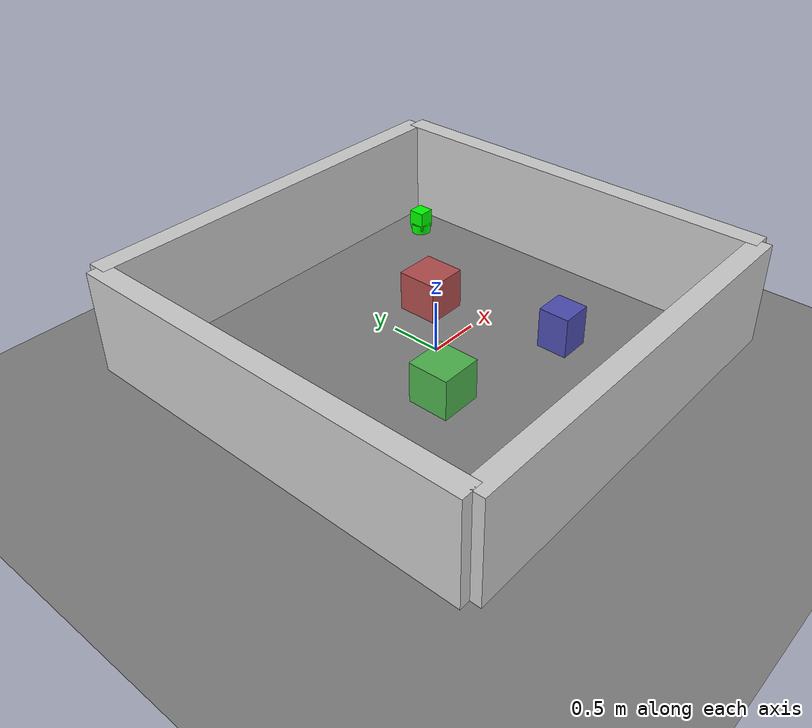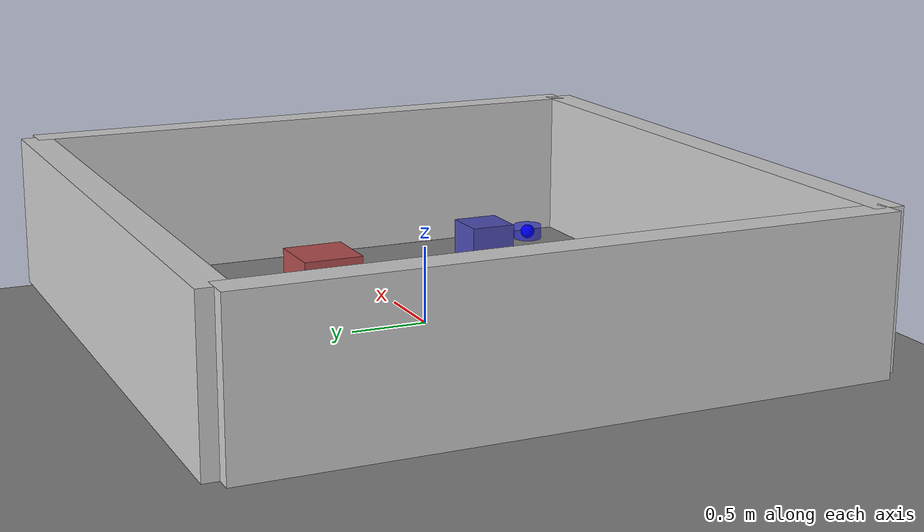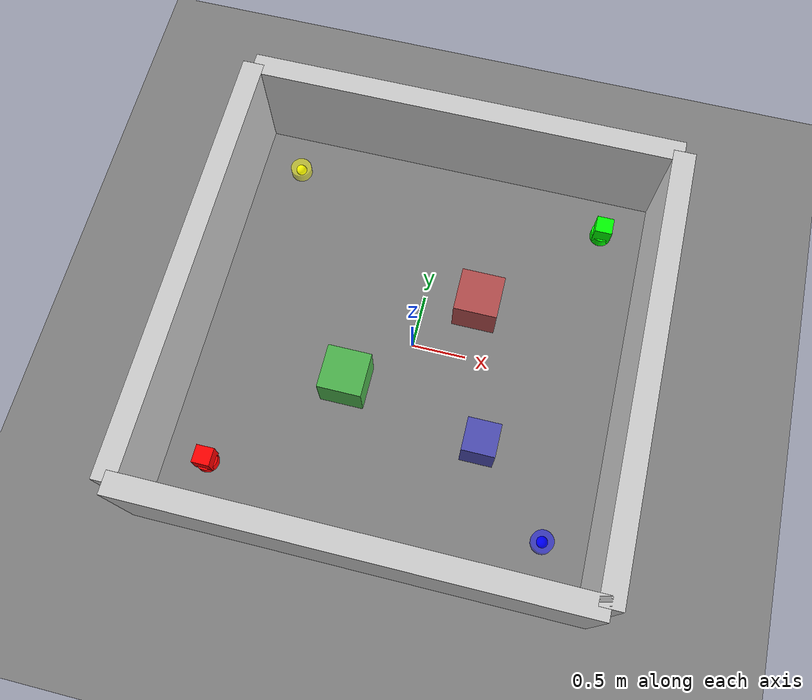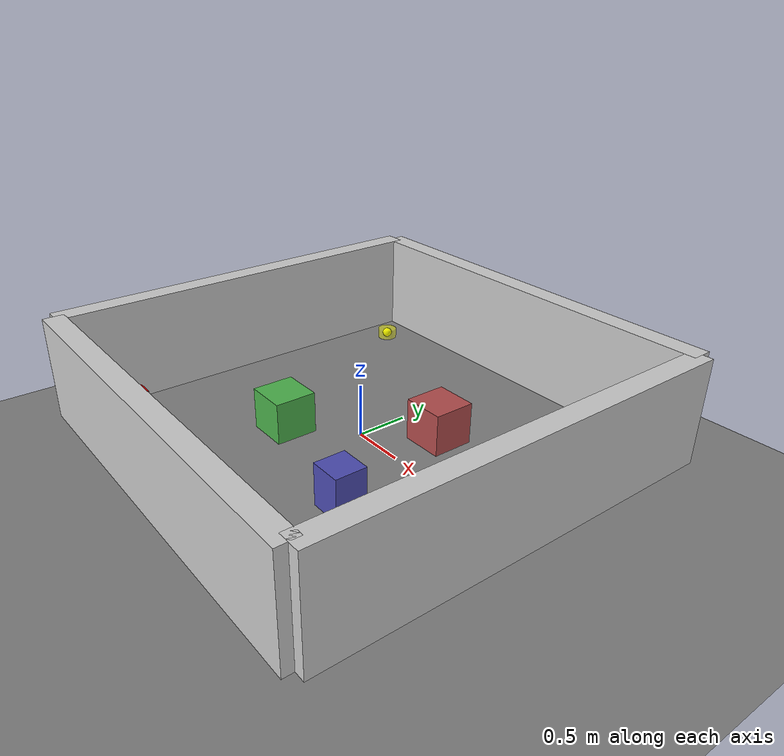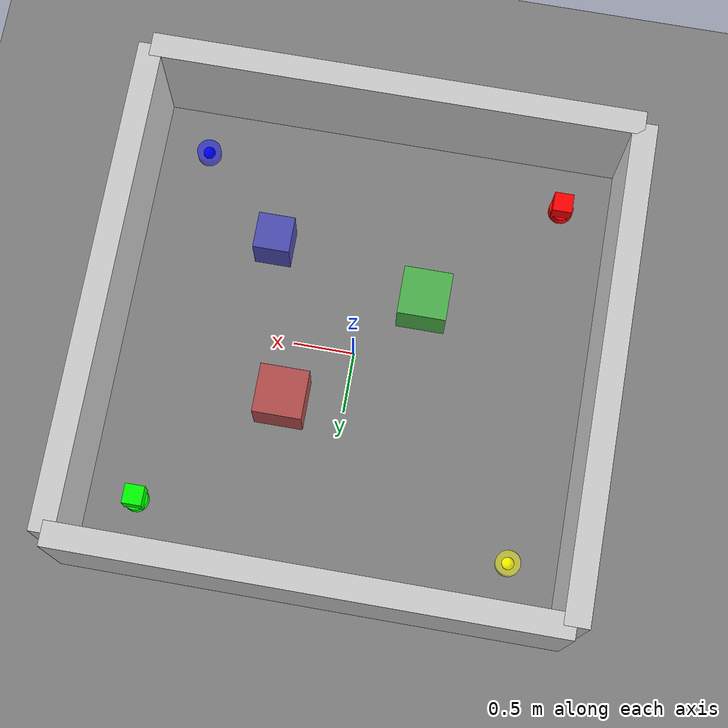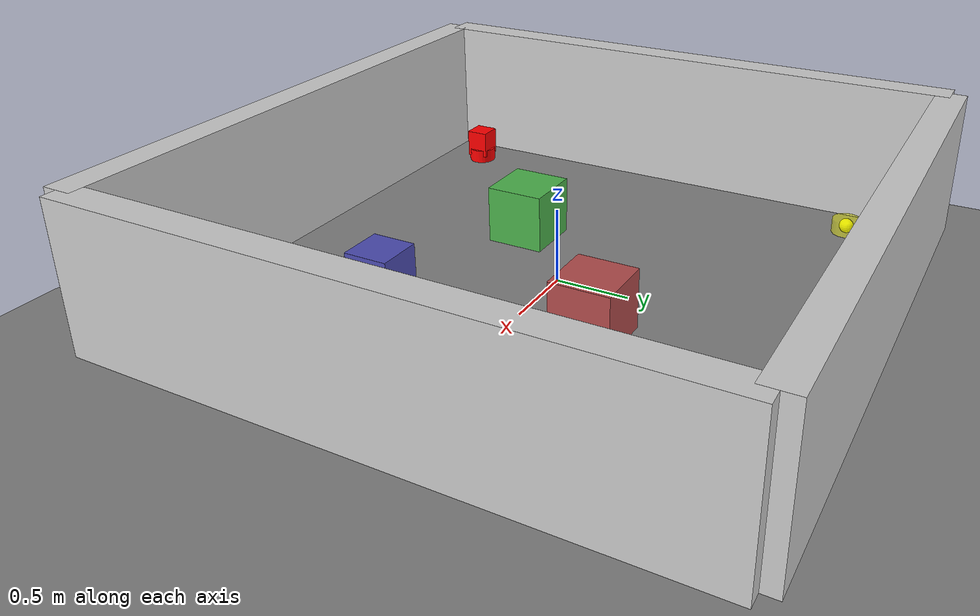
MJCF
<mujoco model="custom_navigation">
  <compiler angle="radian" autolimits="true"/>
  <option timestep="0.002" gravity="0 0 -9.81"/>

  <visual>
    <headlight diffuse="0.6 0.6 0.6" ambient="0.1 0.1 0.1" specular="0 0 0"/>
    <rgba haze="0.15 0.25 0.35 1"/>
    <global azimuth="120" elevation="-20"/>
  </visual>

  <worldbody>
    <!-- 光照 -->
    <light pos="0 0 2" dir="0 0 -1" directional="true"/>

    <!-- 地面 -->
    <geom name="floor" pos="0 0 -0.5" size="0 0 0.05" type="plane" rgba="0.5 0.5 0.5 1"/>

    <!-- 房间边界 -->
    <body name="room" pos="0 0 0">
      <!-- 墙壁 -->
      <geom name="wall_north" pos="0 2 0.5" size="2 0.1 0.5" type="box" rgba="0.8 0.8 0.8 1"/>
      <geom name="wall_south" pos="0 -2 0.5" size="2 0.1 0.5" type="box" rgba="0.8 0.8 0.8 1"/>
      <geom name="wall_east" pos="2 0 0.5" size="0.1 2 0.5" type="box" rgba="0.8 0.8 0.8 1"/>
      <geom name="wall_west" pos="-2 0 0.5" size="0.1 2 0.5" type="box" rgba="0.8 0.8 0.8 1"/>
    </body>

    <!-- 障碍物 -->
    <body name="obstacle1" pos="0.5 0.5 0.2">
      <geom name="obs1" type="box" size="0.2 0.2 0.2" rgba="0.7 0.3 0.3 1"/>
    </body>

    <body name="obstacle2" pos="-0.5 -0.5 0.2">
      <geom name="obs2" type="box" size="0.2 0.2 0.2" rgba="0.3 0.7 0.3 1"/>
    </body>

    <body name="obstacle3" pos="0.8 -0.8 0.2">
      <geom name="obs3" type="box" size="0.15 0.15 0.2" rgba="0.3 0.3 0.7 1"/>
    </body>

    <!-- 机器人1 (红色) -->
    <body name="robot1_base" pos="-1.5 -1.5 0.1">
      <geom name="robot1_base_geom" type="cylinder" size="0.1 0.05" rgba="1 0 0 1"/>
      <joint name="robot1_joint" type="free"/>
      <body name="robot1_body" pos="0 0 0.1">
        <geom name="robot1_body_geom" type="box" size="0.08 0.08 0.1" rgba="1 0 0 1"/>
        <site name="robot1_site" pos="0 0 0" size="0.05" rgba="1 0 0 0.5"/>
      </body>
    </body>

    <!-- 机器人2 (绿色) -->
    <body name="robot2_base" pos="1.5 1.5 0.1">
      <geom name="robot2_base_geom" type="cylinder" size="0.1 0.05" rgba="0 1 0 1"/>
      <joint name="robot2_joint" type="free"/>
      <body name="robot2_body" pos="0 0 0.1">
        <geom name="robot2_body_geom" type="box" size="0.08 0.08 0.1" rgba="0 1 0 1"/>
        <site name="robot2_site" pos="0 0 0" size="0.05" rgba="0 1 0 0.5"/>
      </body>
    </body>

    <!-- 目标地点 -->
    <body name="target1" pos="1.5 -1.5 0.1">
      <geom name="target1_geom" type="cylinder" size="0.1 0.05" conaffinity="0" contype="0" rgba="0 0 1 0.5"/>
      <site name="target1_site" pos="0 0 0" size="0.05" rgba="0 0 1 1"/>
    </body>

    <body name="target2" pos="-1.5 1.5 0.1">
      <geom name="target2_geom" type="cylinder" size="0.1 0.05" conaffinity="0" contype="0" rgba="1 1 0 0.5"/>
      <site name="target2_site" pos="0 0 0" size="0.05" rgba="1 1 0 1"/>
    </body>
  </worldbody>

  <actuator>
    <motor name="robot1_motor_x" joint="robot1_joint" gear="100"/>
    <motor name="robot1_motor_y" joint="robot1_joint" gear="100"/>
    <motor name="robot2_motor_x" joint="robot2_joint" gear="100"/>
    <motor name="robot2_motor_y" joint="robot2_joint" gear="100"/>
  </actuator>
</mujoco>
